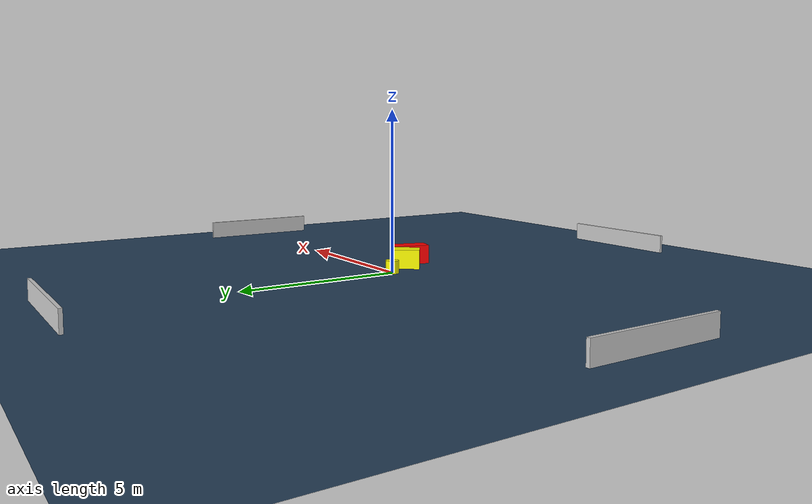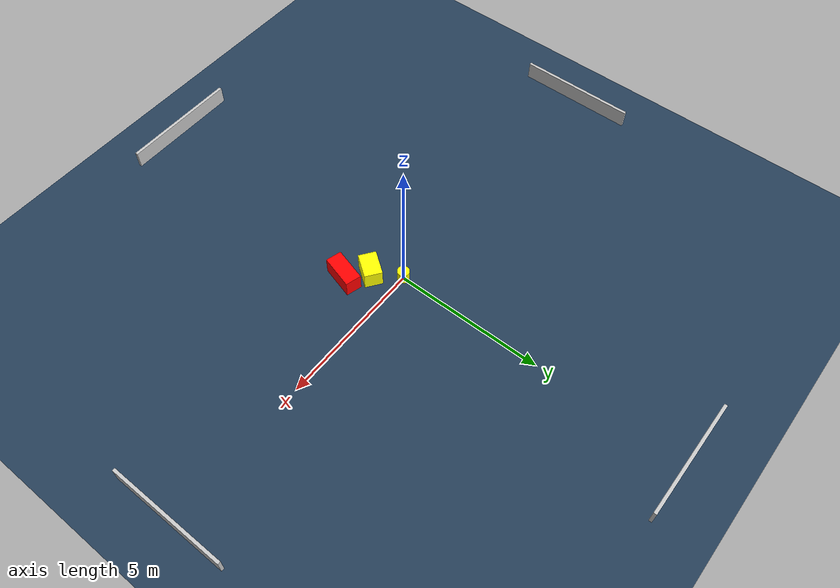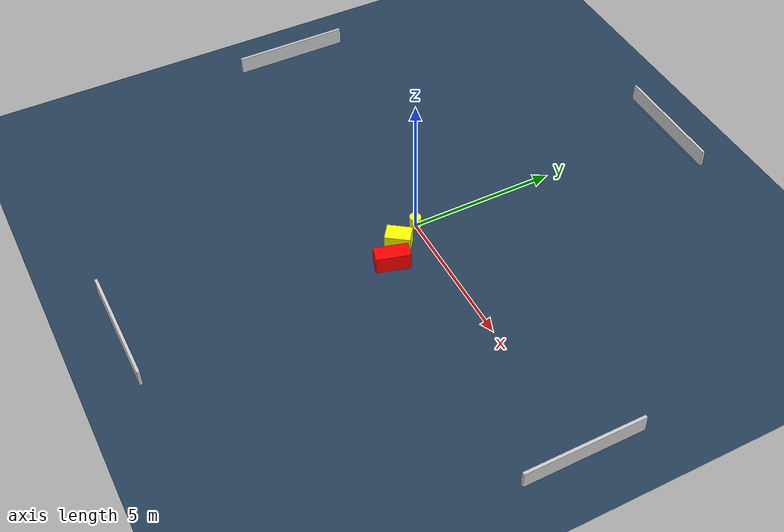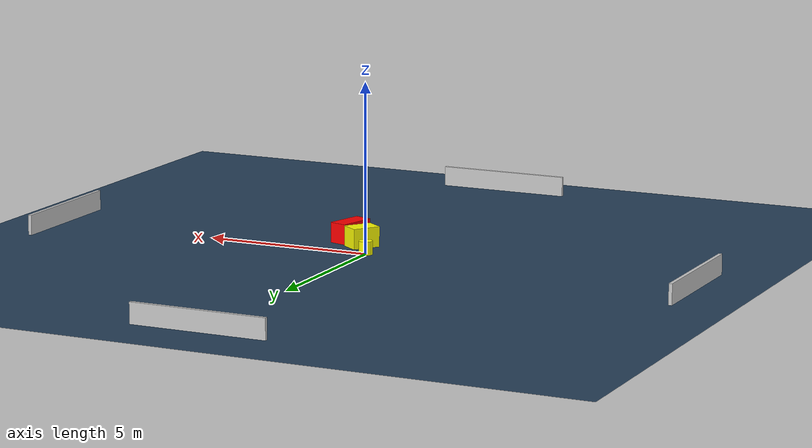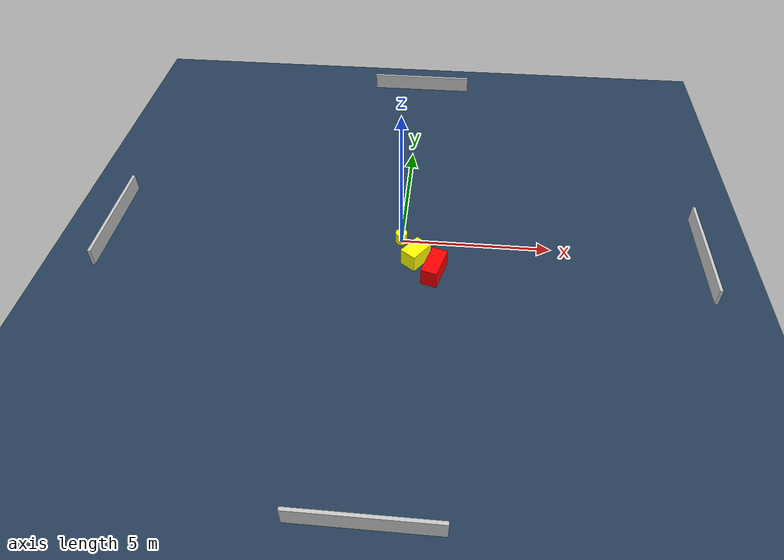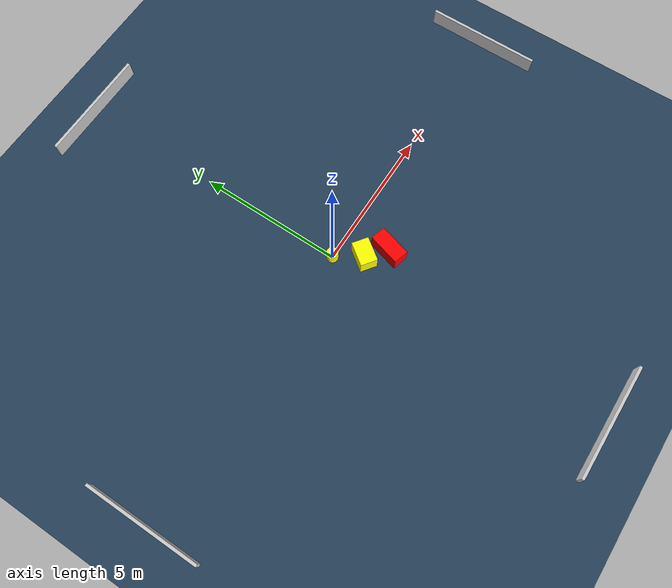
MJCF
<?xml version="1.0" ?>
<mujoco model="generated_environment">
  <option timestep="0.01" integrator="RK4" cone="elliptic"/>
  <default>
    <geom density="1"/>
  </default>
  <asset>
    <texture builtin="gradient" height="3072" name="skybox" rgb1="0.3 0.5 0.7" rgb2="0 0 0" type="skybox" width="512"/>
    <texture builtin="checker" height="300" name="groundplane" rgb1="0.2 0.3 0.4" rgb2="0.1 0.2 0.3" type="2d" width="300"/>
    <material name="groundplane" reflectance="0.2" texrepeat="5 5" texture="groundplane"/>
  </asset>
  <worldbody>
    <light dir="0 0 -1" directional="true" pos="0 0 1.5"/>
    <geom condim="3" friction="0.5 0.005 0.001" material="groundplane" name="floor" pos="0 0 0" size="0 0 0.05" type="plane"/>
    <body name="walls">
      <geom name="wall_1" condim="4" pos="-10.0 0.0 0.3" rgba="0.800000011920929 0.800000011920929 0.800000011920929 1.0" size="0.05 2.0 0.3" type="box"/>
      <geom name="wall_2" condim="4" pos="10.0 0.0 0.3" rgba="0.800000011920929 0.800000011920929 0.800000011920929 1.0" size="0.05 2.0 0.3" type="box"/>
      <geom name="wall_3" condim="4" pos="0.0 -10.0 0.3" rgba="0.800000011920929 0.800000011920929 0.800000011920929 1.0" size="2.0 0.05 0.3" type="box"/>
      <geom name="wall_4" condim="4" pos="0.0 10.0 0.3" rgba="0.800000011920929 0.800000011920929 0.800000011920929 1.0" size="2.0 0.05 0.3" type="box"/>
    </body>
    <body name="robot">
      <joint name="joint_x" type="slide" pos="0 0 0" axis="1 0 0"/>
      <joint name="joint_y" type="slide" pos="0 0 0" axis="0 1 0"/>
      <geom name="robot" type="cylinder" pos="0.0 0.0 0.2" size="0.2 0.2 0.0" mass="5.0" friction="1.0 0.005 0.0001" condim="4" rgba="1.0 1.0 0.0 1.0"/>
    </body>
    <body name="obstacle_1_movable">
      <geom name="obstacle_1_movable" condim="4" pos="0.5442460273122232 -0.8886189212243917 0.3" euler="0 0 53.768540450844846" friction="0.0 0.005 0.001" rgba="1.0 1.0 0.0 1.0" size="0.4187889596300272 0.2930886673483667 0.3" type="box" mass="0.1"/>
      <joint type="free"/>
    </body>
    <body name="obstacle_2_static">
      <geom name="obstacle_2_static" condim="4" pos="1.1804556616843898 -1.443312872162965 0.3" euler="0 0 164.06362559428442" friction="0.0 0.005 0.001" rgba="1.0 0.0 0.0 1.0" size="0.26525239822112967 0.5658150366689814 0.3" type="box"/>
    </body>
  </worldbody>
  <actuator>
    <motor name="actuator_x" joint="joint_x" gear="1" ctrlrange="-1 1"/>
    <motor name="actuator_y" joint="joint_y" gear="1" ctrlrange="-1 1"/>
  </actuator>
</mujoco>
